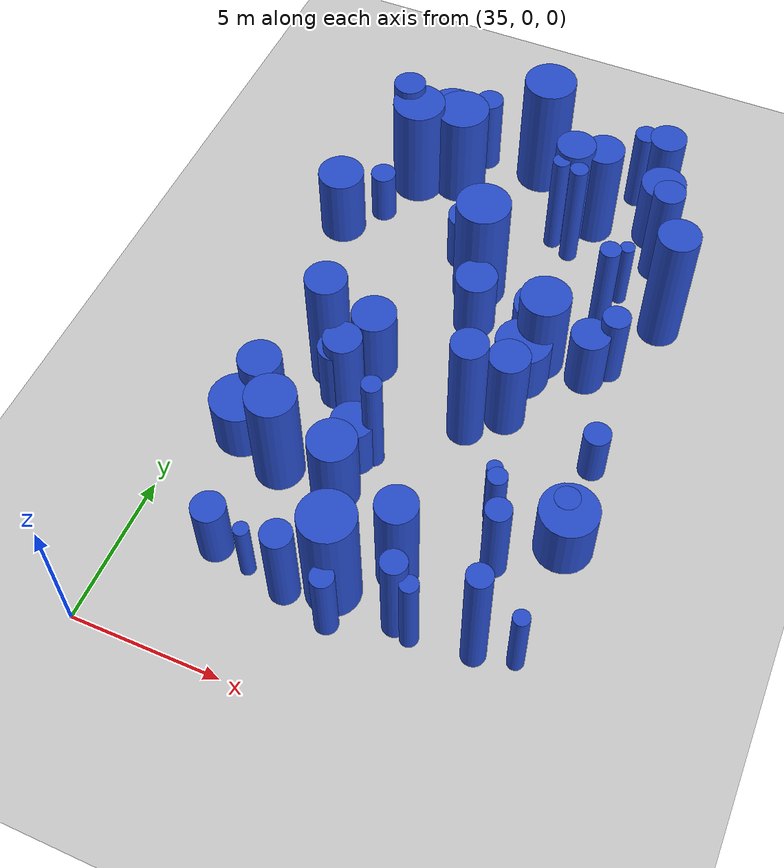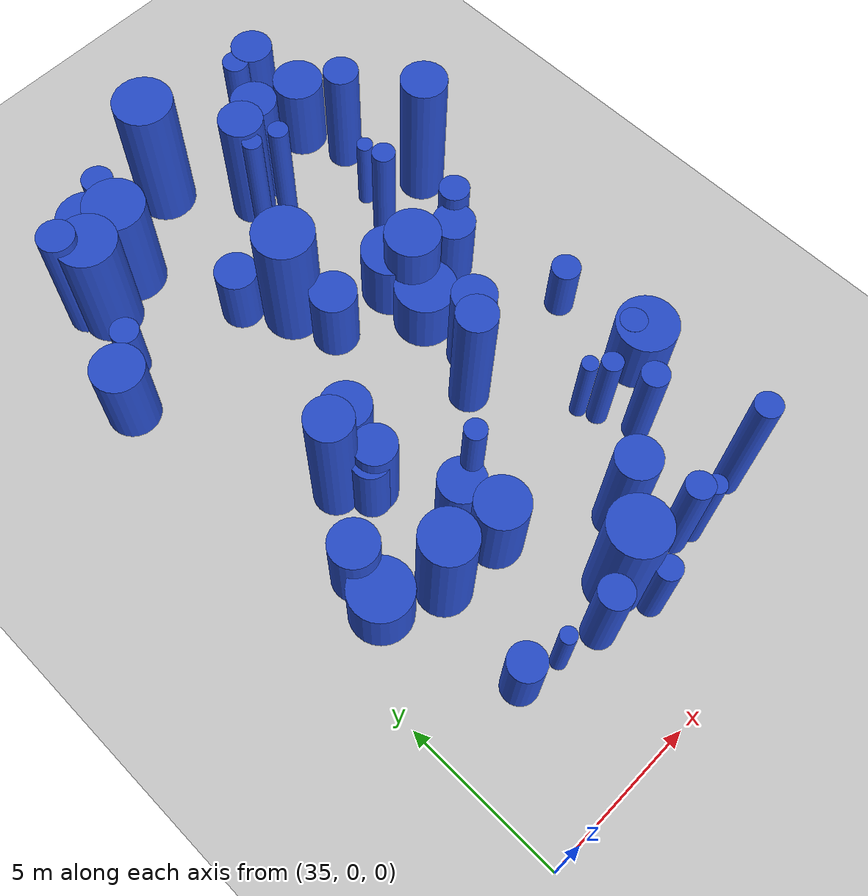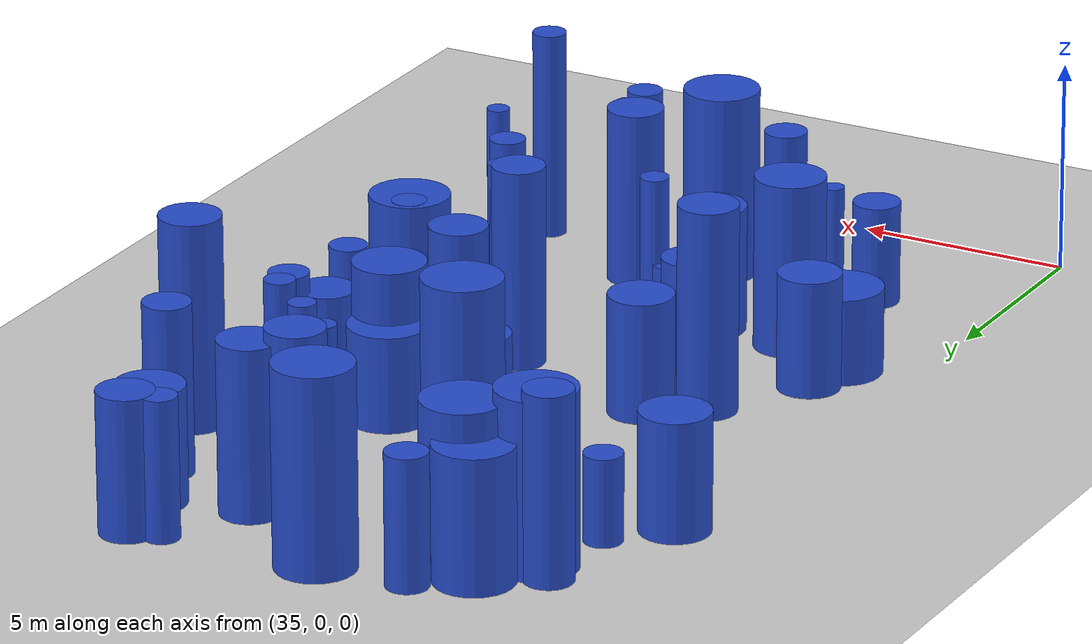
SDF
<sdf version="1.6">
 <world name="default">
  <model name="ground_plane">
   <static>1</static>
   <link name="link">
    <collision name="collision">
     <geometry><plane><normal>0 0 1</normal><size>100 100</size></plane></geometry>
     <surface><friction><ode><mu>100</mu><mu2>50</mu2></ode></friction></surface>
    </collision>
    <visual name="visual">
     <cast_shadows>0</cast_shadows>
     <geometry><plane><normal>0 0 1</normal><size>100 100</size></plane></geometry>
     <material>
      <script><uri>file://media/materials/scripts/gazebo.material</uri><name>Gazebo/Grey</name></script>
     </material>
    </visual>
   </link>
  </model>
  <model name="6">
   <static>0</static>
   <link name="link">
    <inertial>
     <mass>2</mass>
     <inertia>
      <ixx>0.798572</ixx>
      <ixy>0</ixy>
      <ixz>0</ixz>
      <iyy>0.798572</iyy>
      <iyz>0</iyz>
      <izz>0.198941</izz>
     </inertia>
    </inertial>
    <collision name="collision">
     <geometry><cylinder><length>2.04807</length><radius>0.446028</radius></cylinder></geometry>
     <surface><contact><collide_without_contact>1</collide_without_contact></contact></surface>
    </collision>
    <visual name="visual">
     <geometry><cylinder><length>2.04807</length><radius>0.446028</radius></cylinder></geometry>
     <material>
      <script><uri>file://media/materials/scripts/gazebo.material</uri><name>Gazebo/Blue</name></script>
     </material>
    </visual>
    <gravity>0</gravity>
   </link>
   <pose>36.9335 18.7301 1.02404 0 -0 0</pose>
  </model>
  <model name="19">
   <static>0</static>
   <link name="link">
    <inertial>
     <mass>2</mass>
     <inertia><ixx>1.56851</ixx><ixy>0</ixy><ixz>0</ixz><iyy>1.56851</iyy><iyz>0</iyz><izz>0.224417</izz></inertia>
    </inertial>
    <collision name="collision">
     <geometry><cylinder><length>2.95598</length><radius>0.473727</radius></cylinder></geometry>
     <surface><contact><collide_without_contact>1</collide_without_contact></contact></surface>
    </collision>
    <visual name="visual">
     <geometry><cylinder><length>2.95598</length><radius>0.473727</radius></cylinder></geometry>
     <material>
      <script><uri>file://media/materials/scripts/gazebo.material</uri><name>Gazebo/Blue</name></script>
     </material>
    </visual>
    <gravity>0</gravity>
   </link>
   <pose>46.86 15.0199 1.47799 0 -0 0</pose>
  </model>
  <model name="45">
   <static>0</static>
   <link name="link">
    <inertial>
     <mass>2</mass>
     <inertia>
      <ixx>3.27441</ixx>
      <ixy>0</ixy>
      <ixz>0</ixz>
      <iyy>3.27441</iyy>
      <iyz>0</iyz>
      <izz>0.0994808</izz>
     </inertia>
    </inertial>
    <collision name="collision">
     <geometry><cylinder><length>4.39864</length><radius>0.315406</radius></cylinder></geometry>
     <surface><contact><collide_without_contact>1</collide_without_contact></contact></surface>
    </collision>
    <visual name="visual">
     <geometry><cylinder><length>4.39864</length><radius>0.315406</radius></cylinder></geometry>
     <material>
      <script><uri>file://media/materials/scripts/gazebo.material</uri><name>Gazebo/Blue</name></script>
     </material>
    </visual>
    <gravity>0</gravity>
   </link>
   <pose>43.9023 19.4399 2.19932 0 -0 0</pose>
  </model>
  <model name="57">
   <static>0</static>
   <link name="link">
    <inertial>
     <mass>2</mass>
     <inertia>
      <ixx>2.94814</ixx>
      <ixy>0</ixy>
      <ixz>0</ixz>
      <iyy>2.94814</iyy>
      <iyz>0</iyz>
      <izz>0.0910601</izz>
     </inertia>
    </inertial>
    <collision name="collision">
     <geometry><cylinder><length>4.17321</length><radius>0.301762</radius></cylinder></geometry>
     <surface><contact><collide_without_contact>1</collide_without_contact></contact></surface>
    </collision>
    <visual name="visual">
     <geometry><cylinder><length>4.17321</length><radius>0.301762</radius></cylinder></geometry>
     <material>
      <script><uri>file://media/materials/scripts/gazebo.material</uri><name>Gazebo/Blue</name></script>
     </material>
    </visual>
    <gravity>0</gravity>
   </link>
   <pose>43.17 19.804 2.0866 0 -0 0</pose>
  </model>
  <model name="67">
   <static>0</static>
   <link name="link">
    <inertial>
     <mass>2</mass>
     <inertia><ixx>1.71533</ixx><ixy>0</ixy><ixz>0</ixz><iyy>1.71533</iyy><iyz>0</iyz><izz>0.238819</izz></inertia>
    </inertial>
    <collision name="collision">
     <geometry><cylinder><length>3.09444</length><radius>0.488691</radius></cylinder></geometry>
     <surface><contact><collide_without_contact>1</collide_without_contact></contact></surface>
    </collision>
    <visual name="visual">
     <geometry><cylinder><length>3.09444</length><radius>0.488691</radius></cylinder></geometry>
     <material>
      <script><uri>file://media/materials/scripts/gazebo.material</uri><name>Gazebo/Blue</name></script>
     </material>
    </visual>
    <gravity>0</gravity>
   </link>
   <pose>39.4487 22.7582 1.54722 0 -0 0</pose>
  </model>
  <model name="72">
   <static>0</static>
   <link name="link">
    <inertial>
     <mass>2</mass>
     <inertia><ixx>2.87764</ixx><ixy>0</ixy><ixz>0</ixz><iyy>2.87764</iyy><iyz>0</iyz><izz>0.901467</izz></inertia>
    </inertial>
    <collision name="collision">
     <geometry><cylinder><length>3.81594</length><radius>0.949456</radius></cylinder></geometry>
     <surface><contact><collide_without_contact>1</collide_without_contact></contact></surface>
    </collision>
    <visual name="visual">
     <geometry><cylinder><length>3.81594</length><radius>0.949456</radius></cylinder></geometry>
     <material>
      <script><uri>file://media/materials/scripts/gazebo.material</uri><name>Gazebo/Blue</name></script>
     </material>
    </visual>
    <gravity>0</gravity>
   </link>
   <pose>38.974 21.1839 1.90797 0 -0 0</pose>
  </model>
  <model name="82">
   <static>0</static>
   <link name="link">
    <inertial>
     <mass>2</mass>
     <inertia><ixx>1.12573</ixx><ixy>0</ixy><ixz>0</ixz><iyy>1.12573</iyy><iyz>0</iyz><izz>0.909327</izz></inertia>
    </inertial>
    <collision name="collision">
     <geometry><cylinder><length>2.00659</length><radius>0.953587</radius></cylinder></geometry>
     <surface><contact><collide_without_contact>1</collide_without_contact></contact></surface>
    </collision>
    <visual name="visual">
     <geometry><cylinder><length>2.00659</length><radius>0.953587</radius></cylinder></geometry>
     <material>
      <script><uri>file://media/materials/scripts/gazebo.material</uri><name>Gazebo/Blue</name></script>
     </material>
    </visual>
    <gravity>0</gravity>
   </link>
   <pose>44.2313 13.6334 1.0033 0 -0 0</pose>
  </model>
  <model name="88">
   <static>0</static>
   <link name="link">
    <inertial>
     <mass>2</mass>
     <inertia><ixx>1.53786</ixx><ixy>0</ixy><ixz>0</ixz><iyy>1.53786</iyy><iyz>0</iyz><izz>0.534153</izz></inertia>
    </inertial>
    <collision name="collision">
     <geometry><cylinder><length>2.76129</length><radius>0.730858</radius></cylinder></geometry>
     <surface><contact><collide_without_contact>1</collide_without_contact></contact></surface>
    </collision>
    <visual name="visual">
     <geometry><cylinder><length>2.76129</length><radius>0.730858</radius></cylinder></geometry>
     <material>
      <script><uri>file://media/materials/scripts/gazebo.material</uri><name>Gazebo/Blue</name></script>
     </material>
    </visual>
    <gravity>0</gravity>
   </link>
   <pose>36.906 9.11292 1.38065 0 -0 0</pose>
  </model>
  <model name="98">
   <static>0</static>
   <link name="link">
    <inertial>
     <mass>2</mass>
     <inertia><ixx>2.18267</ixx><ixy>0</ixy><ixz>0</ixz><iyy>2.18267</iyy><iyz>0</iyz><izz>0.247763</izz></inertia>
    </inertial>
    <collision name="collision">
     <geometry><cylinder><length>3.51465</length><radius>0.497758</radius></cylinder></geometry>
     <surface><contact><collide_without_contact>1</collide_without_contact></contact></surface>
    </collision>
    <visual name="visual">
     <geometry><cylinder><length>3.51465</length><radius>0.497758</radius></cylinder></geometry>
     <material>
      <script><uri>file://media/materials/scripts/gazebo.material</uri><name>Gazebo/Blue</name></script>
     </material>
    </visual>
    <gravity>0</gravity>
   </link>
   <pose>40.4795 3.31545 1.75732 0 -0 0</pose>
  </model>
  <model name="99">
   <static>0</static>
   <link name="link">
    <inertial>
     <mass>2</mass>
     <inertia>
      <ixx>1.49455</ixx>
      <ixy>0</ixy>
      <ixz>0</ixz>
      <iyy>1.49455</iyy>
      <iyz>0</iyz>
      <izz>0.0714187</izz>
     </inertia>
    </inertial>
    <collision name="collision">
     <geometry><cylinder><length>2.95856</length><radius>0.267243</radius></cylinder></geometry>
     <surface><contact><collide_without_contact>1</collide_without_contact></contact></surface>
    </collision>
    <visual name="visual">
     <geometry><cylinder><length>2.95856</length><radius>0.267243</radius></cylinder></geometry>
     <material>
      <script><uri>file://media/materials/scripts/gazebo.material</uri><name>Gazebo/Blue</name></script>
     </material>
    </visual>
    <gravity>0</gravity>
   </link>
   <pose>47.7187 3.91039 1.47928 0 -0 0</pose>
  </model>
  <model name="101">
   <static>0</static>
   <link name="link">
    <inertial>
     <mass>2</mass>
     <inertia><ixx>1.24291</ixx><ixy>0</ixy><ixz>0</ixz><iyy>1.24291</iyy><iyz>0</iyz><izz>0.443789</izz></inertia>
    </inertial>
    <collision name="collision">
     <geometry><cylinder><length>2.47509</length><radius>0.666175</radius></cylinder></geometry>
     <surface><contact><collide_without_contact>1</collide_without_contact></contact></surface>
    </collision>
    <visual name="visual">
     <geometry><cylinder><length>2.47509</length><radius>0.666175</radius></cylinder></geometry>
     <material>
      <script><uri>file://media/materials/scripts/gazebo.material</uri><name>Gazebo/Blue</name></script>
     </material>
    </visual>
    <gravity>0</gravity>
   </link>
   <pose>46.2352 14.4153 1.23755 0 -0 0</pose>
  </model>
  <model name="105">
   <static>0</static>
   <link name="link">
    <inertial>
     <mass>2</mass>
     <inertia><ixx>1.90894</ixx><ixy>0</ixy><ixz>0</ixz><iyy>1.90894</iyy><iyz>0</iyz><izz>0.166775</izz></inertia>
    </inertial>
    <collision name="collision">
     <geometry><cylinder><length>3.30958</length><radius>0.408381</radius></cylinder></geometry>
     <surface><contact><collide_without_contact>1</collide_without_contact></contact></surface>
    </collision>
    <visual name="visual">
     <geometry><cylinder><length>3.30958</length><radius>0.408381</radius></cylinder></geometry>
     <material>
      <script><uri>file://media/materials/scripts/gazebo.material</uri><name>Gazebo/Blue</name></script>
     </material>
    </visual>
    <gravity>0</gravity>
   </link>
   <pose>45.3048 23.0794 1.65479 0 -0 0</pose>
  </model>
  <model name="116">
   <static>0</static>
   <link name="link">
    <inertial>
     <mass>2</mass>
     <inertia><ixx>1.02695</ixx><ixy>0</ixy><ixz>0</ixz><iyy>1.02695</iyy><iyz>0</iyz><izz>0.517282</izz></inertia>
    </inertial>
    <collision name="collision">
     <geometry><cylinder><length>2.14705</length><radius>0.719223</radius></cylinder></geometry>
     <surface><contact><collide_without_contact>1</collide_without_contact></contact></surface>
    </collision>
    <visual name="visual">
     <geometry><cylinder><length>2.14705</length><radius>0.719223</radius></cylinder></geometry>
     <material>
      <script><uri>file://media/materials/scripts/gazebo.material</uri><name>Gazebo/Blue</name></script>
     </material>
    </visual>
    <gravity>0</gravity>
   </link>
   <pose>40.4286 8.5032 1.07353 0 -0 0</pose>
  </model>
  <model name="118">
   <static>0</static>
   <link name="link">
    <inertial>
     <mass>2</mass>
     <inertia><ixx>2.84514</ixx><ixy>0</ixy><ixz>0</ixz><iyy>2.84514</iyy><iyz>0</iyz><izz>0.30271</izz></inertia>
    </inertial>
    <collision name="collision">
     <geometry><cylinder><length>4.02029</length><radius>0.550191</radius></cylinder></geometry>
     <surface><contact><collide_without_contact>1</collide_without_contact></contact></surface>
    </collision>
    <visual name="visual">
     <geometry><cylinder><length>4.02029</length><radius>0.550191</radius></cylinder></geometry>
     <material>
      <script><uri>file://media/materials/scripts/gazebo.material</uri><name>Gazebo/Blue</name></script>
     </material>
    </visual>
    <gravity>0</gravity>
   </link>
   <pose>46.9727 19.9979 2.01015 0 -0 0</pose>
  </model>
  <model name="119">
   <static>0</static>
   <link name="link">
    <inertial>
     <mass>2</mass>
     <inertia><ixx>1.28123</ixx><ixy>0</ixy><ixz>0</ixz><iyy>1.28123</iyy><iyz>0</iyz><izz>0.846377</izz></inertia>
    </inertial>
    <collision name="collision">
     <geometry><cylinder><length>2.26897</length><radius>0.919988</radius></cylinder></geometry>
     <surface><contact><collide_without_contact>1</collide_without_contact></contact></surface>
    </collision>
    <visual name="visual">
     <geometry><cylinder><length>2.26897</length><radius>0.919988</radius></cylinder></geometry>
     <material>
      <script><uri>file://media/materials/scripts/gazebo.material</uri><name>Gazebo/Blue</name></script>
     </material>
    </visual>
    <gravity>0</gravity>
   </link>
   <pose>44.2743 15.1347 1.13449 0 -0 0</pose>
  </model>
  <model name="120">
   <static>0</static>
   <link name="link">
    <inertial>
     <mass>2</mass>
     <inertia><ixx>1.40868</ixx><ixy>0</ixy><ixz>0</ixz><iyy>1.40868</iyy><iyz>0</iyz><izz>0.339273</izz></inertia>
    </inertial>
    <collision name="collision">
     <geometry><cylinder><length>2.72658</length><radius>0.582472</radius></cylinder></geometry>
     <surface><contact><collide_without_contact>1</collide_without_contact></contact></surface>
    </collision>
    <visual name="visual">
     <geometry><cylinder><length>2.72658</length><radius>0.582472</radius></cylinder></geometry>
     <material>
      <script><uri>file://media/materials/scripts/gazebo.material</uri><name>Gazebo/Blue</name></script>
     </material>
    </visual>
    <gravity>0</gravity>
   </link>
   <pose>38.9033 10.5047 1.36329 0 -0 0</pose>
  </model>
  <model name="136">
   <static>0</static>
   <link name="link">
    <inertial>
     <mass>2</mass>
     <inertia><ixx>3.26897</ixx><ixy>0</ixy><ixz>0</ixz><iyy>3.26897</iyy><iyz>0</iyz><izz>0.863669</izz></inertia>
    </inertial>
    <collision name="collision">
     <geometry><cylinder><length>4.12587</length><radius>0.929338</radius></cylinder></geometry>
     <surface><contact><collide_without_contact>1</collide_without_contact></contact></surface>
    </collision>
    <visual name="visual">
     <geometry><cylinder><length>4.12587</length><radius>0.929338</radius></cylinder></geometry>
     <material>
      <script><uri>file://media/materials/scripts/gazebo.material</uri><name>Gazebo/Blue</name></script>
     </material>
    </visual>
    <gravity>0</gravity>
   </link>
   <pose>37.5394 20.5667 2.06294 0 -0 0</pose>
  </model>
  <model name="137">
   <static>0</static>
   <link name="link">
    <inertial>
     <mass>2</mass>
     <inertia><ixx>2.20257</ixx><ixy>0</ixy><ixz>0</ixz><iyy>2.20257</iyy><iyz>0</iyz><izz>0.461862</izz></inertia>
    </inertial>
    <collision name="collision">
     <geometry><cylinder><length>3.43945</length><radius>0.679604</radius></cylinder></geometry>
     <surface><contact><collide_without_contact>1</collide_without_contact></contact></surface>
    </collision>
    <visual name="visual">
     <geometry><cylinder><length>3.43945</length><radius>0.679604</radius></cylinder></geometry>
     <material>
      <script><uri>file://media/materials/scripts/gazebo.material</uri><name>Gazebo/Blue</name></script>
     </material>
    </visual>
    <gravity>0</gravity>
   </link>
   <pose>44.3325 11.8416 1.71973 0 -0 0</pose>
  </model>
  <model name="145">
   <static>0</static>
   <link name="link">
    <inertial>
     <mass>2</mass>
     <inertia><ixx>1.85346</ixx><ixy>0</ixy><ixz>0</ixz><iyy>1.85346</iyy><iyz>0</iyz><izz>0.103431</izz></inertia>
    </inertial>
    <collision name="collision">
     <geometry><cylinder><length>3.28793</length><radius>0.321608</radius></cylinder></geometry>
     <surface><contact><collide_without_contact>1</collide_without_contact></contact></surface>
    </collision>
    <visual name="visual">
     <geometry><cylinder><length>3.28793</length><radius>0.321608</radius></cylinder></geometry>
     <material>
      <script><uri>file://media/materials/scripts/gazebo.material</uri><name>Gazebo/Blue</name></script>
     </material>
    </visual>
    <gravity>0</gravity>
   </link>
   <pose>45.522 7.70919 1.64396 0 -0 0</pose>
  </model>
  <model name="150">
   <static>0</static>
   <link name="link">
    <inertial>
     <mass>2</mass>
     <inertia><ixx>1.93783</ixx><ixy>0</ixy><ixz>0</ixz><iyy>1.93783</iyy><iyz>0</iyz><izz>0.415516</izz></inertia>
    </inertial>
    <collision name="collision">
     <geometry><cylinder><length>3.22187</length><radius>0.644606</radius></cylinder></geometry>
     <surface><contact><collide_without_contact>1</collide_without_contact></contact></surface>
    </collision>
    <visual name="visual">
     <geometry><cylinder><length>3.22187</length><radius>0.644606</radius></cylinder></geometry>
     <material>
      <script><uri>file://media/materials/scripts/gazebo.material</uri><name>Gazebo/Blue</name></script>
     </material>
    </visual>
    <gravity>0</gravity>
   </link>
   <pose>39.1495 10.5867 1.61094 0 -0 0</pose>
  </model>
  <model name="152">
   <static>0</static>
   <link name="link">
    <inertial>
     <mass>2</mass>
     <inertia><ixx>2.38788</ixx><ixy>0</ixy><ixz>0</ixz><iyy>2.38788</iyy><iyz>0</iyz><izz>0.720026</izz></inertia>
    </inertial>
    <collision name="collision">
     <geometry><cylinder><length>3.48816</length><radius>0.848543</radius></cylinder></geometry>
     <surface><contact><collide_without_contact>1</collide_without_contact></contact></surface>
    </collision>
    <visual name="visual">
     <geometry><cylinder><length>3.48816</length><radius>0.848543</radius></cylinder></geometry>
     <material>
      <script><uri>file://media/materials/scripts/gazebo.material</uri><name>Gazebo/Blue</name></script>
     </material>
    </visual>
    <gravity>0</gravity>
   </link>
   <pose>44.5666 14.5232 1.74408 0 -0 0</pose>
  </model>
  <model name="155">
   <static>0</static>
   <link name="link">
    <inertial>
     <mass>2</mass>
     <inertia><ixx>2.71802</ixx><ixy>0</ixy><ixz>0</ixz><iyy>2.71802</iyy><iyz>0</iyz><izz>0.171185</izz></inertia>
    </inertial>
    <collision name="collision">
     <geometry><cylinder><length>3.97424</length><radius>0.413745</radius></cylinder></geometry>
     <surface><contact><collide_without_contact>1</collide_without_contact></contact></surface>
    </collision>
    <visual name="visual">
     <geometry><cylinder><length>3.97424</length><radius>0.413745</radius></cylinder></geometry>
     <material>
      <script><uri>file://media/materials/scripts/gazebo.material</uri><name>Gazebo/Blue</name></script>
     </material>
    </visual>
    <gravity>0</gravity>
   </link>
   <pose>44.0068 3.59498 1.98712 0 -0 0</pose>
  </model>
  <model name="167">
   <static>0</static>
   <link name="link">
    <inertial>
     <mass>2</mass>
     <inertia><ixx>2.97575</ixx><ixy>0</ixy><ixz>0</ixz><iyy>2.97575</iyy><iyz>0</iyz><izz>0.496613</izz></inertia>
    </inertial>
    <collision name="collision">
     <geometry><cylinder><length>4.04533</length><radius>0.704708</radius></cylinder></geometry>
     <surface><contact><collide_without_contact>1</collide_without_contact></contact></surface>
    </collision>
    <visual name="visual">
     <geometry><cylinder><length>4.04533</length><radius>0.704708</radius></cylinder></geometry>
     <material>
      <script><uri>file://media/materials/scripts/gazebo.material</uri><name>Gazebo/Blue</name></script>
     </material>
    </visual>
    <gravity>0</gravity>
   </link>
   <pose>44.3187 21.0253 2.02266 0 -0 0</pose>
  </model>
  <model name="169">
   <static>0</static>
   <link name="link">
    <inertial>
     <mass>2</mass>
     <inertia>
      <ixx>1.27619</ixx>
      <ixy>0</ixy>
      <ixz>0</ixz>
      <iyy>1.27619</iyy>
      <iyz>0</iyz>
      <izz>0.0662221</izz>
     </inertia>
    </inertial>
    <collision name="collision">
     <geometry><cylinder><length>2.73102</length><radius>0.257337</radius></cylinder></geometry>
     <surface><contact><collide_without_contact>1</collide_without_contact></contact></surface>
    </collision>
    <visual name="visual">
     <geometry><cylinder><length>2.73102</length><radius>0.257337</radius></cylinder></geometry>
     <material>
      <script><uri>file://media/materials/scripts/gazebo.material</uri><name>Gazebo/Blue</name></script>
     </material>
    </visual>
    <gravity>0</gravity>
   </link>
   <pose>46.2222 18.2269 1.36551 0 -0 0</pose>
  </model>
  <model name="170">
   <static>0</static>
   <link name="link">
    <inertial>
     <mass>2</mass>
     <inertia><ixx>1.62614</ixx><ixy>0</ixy><ixz>0</ixz><iyy>1.62614</iyy><iyz>0</iyz><izz>0.655865</izz></inertia>
    </inertial>
    <collision name="collision">
     <geometry><cylinder><length>2.79092</length><radius>0.809855</radius></cylinder></geometry>
     <surface><contact><collide_without_contact>1</collide_without_contact></contact></surface>
    </collision>
    <visual name="visual">
     <geometry><cylinder><length>2.79092</length><radius>0.809855</radius></cylinder></geometry>
     <material>
      <script><uri>file://media/materials/scripts/gazebo.material</uri><name>Gazebo/Blue</name></script>
     </material>
    </visual>
    <gravity>0</gravity>
   </link>
   <pose>35.848 17.5071 1.39546 0 -0 0</pose>
  </model>
  <model name="171">
   <static>0</static>
   <link name="link">
    <inertial>
     <mass>2</mass>
     <inertia><ixx>1.32113</ixx><ixy>0</ixy><ixz>0</ixz><iyy>1.32113</iyy><iyz>0</iyz><izz>0.517746</izz></inertia>
    </inertial>
    <collision name="collision">
     <geometry><cylinder><length>2.52459</length><radius>0.719546</radius></cylinder></geometry>
     <surface><contact><collide_without_contact>1</collide_without_contact></contact></surface>
    </collision>
    <visual name="visual">
     <geometry><cylinder><length>2.52459</length><radius>0.719546</radius></cylinder></geometry>
     <material>
      <script><uri>file://media/materials/scripts/gazebo.material</uri><name>Gazebo/Blue</name></script>
     </material>
    </visual>
    <gravity>0</gravity>
   </link>
   <pose>41.9355 15.171 1.26229 0 -0 0</pose>
  </model>
  <model name="175">
   <static>0</static>
   <link name="link">
    <inertial>
     <mass>2</mass>
     <inertia><ixx>2.09233</ixx><ixy>0</ixy><ixz>0</ixz><iyy>2.09233</iyy><iyz>0</iyz><izz>0.850902</izz></inertia>
    </inertial>
    <collision name="collision">
     <geometry><cylinder><length>3.16248</length><radius>0.922444</radius></cylinder></geometry>
     <surface><contact><collide_without_contact>1</collide_without_contact></contact></surface>
    </collision>
    <visual name="visual">
     <geometry><cylinder><length>3.16248</length><radius>0.922444</radius></cylinder></geometry>
     <material>
      <script><uri>file://media/materials/scripts/gazebo.material</uri><name>Gazebo/Blue</name></script>
     </material>
    </visual>
    <gravity>0</gravity>
   </link>
   <pose>38.3389 21.8535 1.58124 0 -0 0</pose>
  </model>
  <model name="182">
   <static>0</static>
   <link name="link">
    <inertial>
     <mass>2</mass>
     <inertia><ixx>2.3455</ixx><ixy>0</ixy><ixz>0</ixz><iyy>2.3455</iyy><iyz>0</iyz><izz>0.128632</izz></inertia>
    </inertial>
    <collision name="collision">
     <geometry><cylinder><length>3.69961</length><radius>0.358653</radius></cylinder></geometry>
     <surface><contact><collide_without_contact>1</collide_without_contact></contact></surface>
    </collision>
    <visual name="visual">
     <geometry><cylinder><length>3.69961</length><radius>0.358653</radius></cylinder></geometry>
     <material>
      <script><uri>file://media/materials/scripts/gazebo.material</uri><name>Gazebo/Blue</name></script>
     </material>
    </visual>
    <gravity>0</gravity>
   </link>
   <pose>45.8853 17.0491 1.84981 0 -0 0</pose>
  </model>
  <model name="217">
   <static>0</static>
   <link name="link">
    <inertial>
     <mass>2</mass>
     <inertia>
      <ixx>0.935657</ixx>
      <ixy>0</ixy>
      <ixz>0</ixz>
      <iyy>0.935657</iyy>
      <iyz>0</iyz>
      <izz>0.172825</izz>
     </inertia>
    </inertial>
    <collision name="collision">
     <geometry><cylinder><length>2.25731</length><radius>0.415722</radius></cylinder></geometry>
     <surface><contact><collide_without_contact>1</collide_without_contact></contact></surface>
    </collision>
    <visual name="visual">
     <geometry><cylinder><length>2.25731</length><radius>0.415722</radius></cylinder></geometry>
     <material>
      <script><uri>file://media/materials/scripts/gazebo.material</uri><name>Gazebo/Blue</name></script>
     </material>
    </visual>
    <gravity>0</gravity>
   </link>
   <pose>47.5424 8.43529 1.12866 0 -0 0</pose>
  </model>
  <model name="224">
   <static>0</static>
   <link name="link">
    <inertial>
     <mass>2</mass>
     <inertia><ixx>3.16127</ixx><ixy>0</ixy><ixz>0</ixz><iyy>3.16127</iyy><iyz>0</iyz><izz>0.673623</izz></inertia>
    </inertial>
    <collision name="collision">
     <geometry><cylinder><length>4.11664</length><radius>0.820745</radius></cylinder></geometry>
     <surface><contact><collide_without_contact>1</collide_without_contact></contact></surface>
    </collision>
    <visual name="visual">
     <geometry><cylinder><length>4.11664</length><radius>0.820745</radius></cylinder></geometry>
     <material>
      <script><uri>file://media/materials/scripts/gazebo.material</uri><name>Gazebo/Blue</name></script>
     </material>
    </visual>
    <gravity>0</gravity>
   </link>
   <pose>38.4007 7.15799 2.05832 0 -0 0</pose>
  </model>
  <model name="234">
   <static>0</static>
   <link name="link">
    <inertial>
     <mass>2</mass>
     <inertia><ixx>3.13441</ixx><ixy>0</ixy><ixz>0</ixz><iyy>3.13441</iyy><iyz>0</iyz><izz>0.438051</izz></inertia>
    </inertial>
    <collision name="collision">
     <geometry><cylinder><length>4.18238</length><radius>0.661854</radius></cylinder></geometry>
     <surface><contact><collide_without_contact>1</collide_without_contact></contact></surface>
    </collision>
    <visual name="visual">
     <geometry><cylinder><length>4.18238</length><radius>0.661854</radius></cylinder></geometry>
     <material>
      <script><uri>file://media/materials/scripts/gazebo.material</uri><name>Gazebo/Blue</name></script>
     </material>
    </visual>
    <gravity>0</gravity>
   </link>
   <pose>43.3973 5.18568 2.09119 0 -0 0</pose>
  </model>
  <model name="249">
   <static>0</static>
   <link name="link">
    <inertial>
     <mass>2</mass>
     <inertia><ixx>4.11239</ixx><ixy>0</ixy><ixz>0</ixz><iyy>4.11239</iyy><iyz>0</iyz><izz>0.845194</izz></inertia>
    </inertial>
    <collision name="collision">
     <geometry><cylinder><length>4.70519</length><radius>0.919344</radius></cylinder></geometry>
     <surface><contact><collide_without_contact>1</collide_without_contact></contact></surface>
    </collision>
    <visual name="visual">
     <geometry><cylinder><length>4.70519</length><radius>0.919344</radius></cylinder></geometry>
     <material>
      <script><uri>file://media/materials/scripts/gazebo.material</uri><name>Gazebo/Blue</name></script>
     </material>
    </visual>
    <gravity>0</gravity>
   </link>
   <pose>41.6442 22.8356 2.35259 0 -0 0</pose>
  </model>
  <model name="253">
   <static>0</static>
   <link name="link">
    <inertial>
     <mass>2</mass>
     <inertia>
      <ixx>1.38736</ixx>
      <ixy>0</ixy>
      <ixz>0</ixz>
      <iyy>1.38736</iyy>
      <iyz>0</iyz>
      <izz>0.0647171</izz>
     </inertia>
    </inertial>
    <collision name="collision">
     <geometry><cylinder><length>2.85132</length><radius>0.254395</radius></cylinder></geometry>
     <surface><contact><collide_without_contact>1</collide_without_contact></contact></surface>
    </collision>
    <visual name="visual">
     <geometry><cylinder><length>2.85132</length><radius>0.254395</radius></cylinder></geometry>
     <material>
      <script><uri>file://media/materials/scripts/gazebo.material</uri><name>Gazebo/Blue</name></script>
     </material>
    </visual>
    <gravity>0</gravity>
   </link>
   <pose>45.2591 8.22789 1.42566 0 -0 0</pose>
  </model>
  <model name="261">
   <static>0</static>
   <link name="link">
    <inertial>
     <mass>2</mass>
     <inertia><ixx>3.92085</ixx><ixy>0</ixy><ixz>0</ixz><iyy>3.92085</iyy><iyz>0</iyz><izz>0.374343</izz></inertia>
    </inertial>
    <collision name="collision">
     <geometry><cylinder><length>4.73308</length><radius>0.611836</radius></cylinder></geometry>
     <surface><contact><collide_without_contact>1</collide_without_contact></contact></surface>
    </collision>
    <visual name="visual">
     <geometry><cylinder><length>4.73308</length><radius>0.611836</radius></cylinder></geometry>
     <material>
      <script><uri>file://media/materials/scripts/gazebo.material</uri><name>Gazebo/Blue</name></script>
     </material>
    </visual>
    <gravity>0</gravity>
   </link>
   <pose>43.3222 10.8777 2.36654 0 -0 0</pose>
  </model>
  <model name="269">
   <static>0</static>
   <link name="link">
    <inertial>
     <mass>2</mass>
     <inertia><ixx>1.59036</ixx><ixy>0</ixy><ixz>0</ixz><iyy>1.59036</iyy><iyz>0</iyz><izz>0.142162</izz></inertia>
    </inertial>
    <collision name="collision">
     <geometry><cylinder><length>3.01921</length><radius>0.377044</radius></cylinder></geometry>
     <surface><contact><collide_without_contact>1</collide_without_contact></contact></surface>
    </collision>
    <visual name="visual">
     <geometry><cylinder><length>3.01921</length><radius>0.377044</radius></cylinder></geometry>
     <material>
      <script><uri>file://media/materials/scripts/gazebo.material</uri><name>Gazebo/Blue</name></script>
     </material>
    </visual>
    <gravity>0</gravity>
   </link>
   <pose>42.1156 2.82847 1.50961 0 -0 0</pose>
  </model>
  <model name="271">
   <static>0</static>
   <link name="link">
    <inertial>
     <mass>2</mass>
     <inertia>
      <ixx>0.817362</ixx>
      <ixy>0</ixy>
      <ixz>0</ixz>
      <iyy>0.817362</iyy>
      <iyz>0</iyz>
      <izz>0.202451</izz>
     </inertia>
    </inertial>
    <collision name="collision">
     <geometry><cylinder><length>2.07288</length><radius>0.449946</radius></cylinder></geometry>
     <surface><contact><collide_without_contact>1</collide_without_contact></contact></surface>
    </collision>
    <visual name="visual">
     <geometry><cylinder><length>2.07288</length><radius>0.449946</radius></cylinder></geometry>
     <material>
      <script><uri>file://media/materials/scripts/gazebo.material</uri><name>Gazebo/Blue</name></script>
     </material>
    </visual>
    <gravity>0</gravity>
   </link>
   <pose>47.6206 11.0875 1.03644 0 -0 0</pose>
  </model>
  <model name="292">
   <static>0</static>
   <link name="link">
    <inertial>
     <mass>2</mass>
     <inertia><ixx>3.78652</ixx><ixy>0</ixy><ixz>0</ixz><iyy>3.78652</iyy><iyz>0</iyz><izz>0.785687</izz></inertia>
    </inertial>
    <collision name="collision">
     <geometry><cylinder><length>4.51243</length><radius>0.88639</radius></cylinder></geometry>
     <surface><contact><collide_without_contact>1</collide_without_contact></contact></surface>
    </collision>
    <visual name="visual">
     <geometry><cylinder><length>4.51243</length><radius>0.88639</radius></cylinder></geometry>
     <material>
      <script><uri>file://media/materials/scripts/gazebo.material</uri><name>Gazebo/Blue</name></script>
     </material>
    </visual>
    <gravity>0</gravity>
   </link>
   <pose>41.8401 3.90308 2.25622 0 -0 0</pose>
  </model>
  <model name="305">
   <static>0</static>
   <link name="link">
    <inertial>
     <mass>2</mass>
     <inertia><ixx>1.58598</ixx><ixy>0</ixy><ixz>0</ixz><iyy>1.58598</iyy><iyz>0</iyz><izz>0.631832</izz></inertia>
    </inertial>
    <collision name="collision">
     <geometry><cylinder><length>2.76051</length><radius>0.794879</radius></cylinder></geometry>
     <surface><contact><collide_without_contact>1</collide_without_contact></contact></surface>
    </collision>
    <visual name="visual">
     <geometry><cylinder><length>2.76051</length><radius>0.794879</radius></cylinder></geometry>
     <material>
      <script><uri>file://media/materials/scripts/gazebo.material</uri><name>Gazebo/Blue</name></script>
     </material>
    </visual>
    <gravity>0</gravity>
   </link>
   <pose>46.4872 21.5428 1.38025 0 -0 0</pose>
  </model>
  <model name="324">
   <static>0</static>
   <link name="link">
    <inertial>
     <mass>2</mass>
     <inertia><ixx>2.04911</ixx><ixy>0</ixy><ixz>0</ixz><iyy>2.04911</iyy><iyz>0</iyz><izz>0.175102</izz></inertia>
    </inertial>
    <collision name="collision">
     <geometry><cylinder><length>3.43065</length><radius>0.418452</radius></cylinder></geometry>
     <surface><contact><collide_without_contact>1</collide_without_contact></contact></surface>
    </collision>
    <visual name="visual">
     <geometry><cylinder><length>3.43065</length><radius>0.418452</radius></cylinder></geometry>
     <material>
      <script><uri>file://media/materials/scripts/gazebo.material</uri><name>Gazebo/Blue</name></script>
     </material>
    </visual>
    <gravity>0</gravity>
   </link>
   <pose>45.9812 6.59246 1.71532 0 -0 0</pose>
  </model>
  <model name="347">
   <static>0</static>
   <link name="link">
    <inertial>
     <mass>2</mass>
     <inertia><ixx>1.29773</ixx><ixy>0</ixy><ixz>0</ixz><iyy>1.29773</iyy><iyz>0</iyz><izz>0.905692</izz></inertia>
    </inertial>
    <collision name="collision">
     <geometry><cylinder><length>2.25151</length><radius>0.951679</radius></cylinder></geometry>
     <surface><contact><collide_without_contact>1</collide_without_contact></contact></surface>
    </collision>
    <visual name="visual">
     <geometry><cylinder><length>2.25151</length><radius>0.951679</radius></cylinder></geometry>
     <material>
      <script><uri>file://media/materials/scripts/gazebo.material</uri><name>Gazebo/Blue</name></script>
     </material>
    </visual>
    <gravity>0</gravity>
   </link>
   <pose>47.7369 8.0693 1.12575 0 -0 0</pose>
  </model>
  <model name="355">
   <static>0</static>
   <link name="link">
    <inertial>
     <mass>2</mass>
     <inertia>
      <ixx>1.04618</ixx>
      <ixy>0</ixy>
      <ixz>0</ixz>
      <iyy>1.04618</iyy>
      <iyz>0</iyz>
      <izz>0.0627363</izz>
     </inertia>
    </inertial>
    <collision name="collision">
     <geometry><cylinder><length>2.46757</length><radius>0.250472</radius></cylinder></geometry>
     <surface><contact><collide_without_contact>1</collide_without_contact></contact></surface>
    </collision>
    <visual name="visual">
     <geometry><cylinder><length>2.46757</length><radius>0.250472</radius></cylinder></geometry>
     <material>
      <script><uri>file://media/materials/scripts/gazebo.material</uri><name>Gazebo/Blue</name></script>
     </material>
    </visual>
    <gravity>0</gravity>
   </link>
   <pose>39.1217 3.54359 1.23378 0 -0 0</pose>
  </model>
  <model name="369">
   <static>0</static>
   <link name="link">
    <inertial>
     <mass>2</mass>
     <inertia><ixx>2.04539</ixx><ixy>0</ixy><ixz>0</ixz><iyy>2.04539</iyy><iyz>0</iyz><izz>0.42791</izz></inertia>
    </inertial>
    <collision name="collision">
     <geometry><cylinder><length>3.3149</length><radius>0.654148</radius></cylinder></geometry>
     <surface><contact><collide_without_contact>1</collide_without_contact></contact></surface>
    </collision>
    <visual name="visual">
     <geometry><cylinder><length>3.3149</length><radius>0.654148</radius></cylinder></geometry>
     <material>
      <script><uri>file://media/materials/scripts/gazebo.material</uri><name>Gazebo/Blue</name></script>
     </material>
    </visual>
    <gravity>0</gravity>
   </link>
   <pose>46.0804 23.1875 1.65745 0 -0 0</pose>
  </model>
  <model name="387">
   <static>0</static>
   <link name="link">
    <inertial>
     <mass>2</mass>
     <inertia><ixx>1.1471</ixx><ixy>0</ixy><ixz>0</ixz><iyy>1.1471</iyy><iyz>0</iyz><izz>0.307863</izz></inertia>
    </inertial>
    <collision name="collision">
     <geometry><cylinder><length>2.4411</length><radius>0.554854</radius></cylinder></geometry>
     <surface><contact><collide_without_contact>1</collide_without_contact></contact></surface>
    </collision>
    <visual name="visual">
     <geometry><cylinder><length>2.4411</length><radius>0.554854</radius></cylinder></geometry>
     <material>
      <script><uri>file://media/materials/scripts/gazebo.material</uri><name>Gazebo/Blue</name></script>
     </material>
    </visual>
    <gravity>0</gravity>
   </link>
   <pose>37.874 3.82917 1.22055 0 -0 0</pose>
  </model>
  <model name="395">
   <static>0</static>
   <link name="link">
    <inertial>
     <mass>2</mass>
     <inertia><ixx>3.39084</ixx><ixy>0</ixy><ixz>0</ixz><iyy>3.39084</iyy><iyz>0</iyz><izz>0.320409</izz></inertia>
    </inertial>
    <collision name="collision">
     <geometry><cylinder><length>4.40271</length><radius>0.566047</radius></cylinder></geometry>
     <surface><contact><collide_without_contact>1</collide_without_contact></contact></surface>
    </collision>
    <visual name="visual">
     <geometry><cylinder><length>4.40271</length><radius>0.566047</radius></cylinder></geometry>
     <material>
      <script><uri>file://media/materials/scripts/gazebo.material</uri><name>Gazebo/Blue</name></script>
     </material>
    </visual>
    <gravity>0</gravity>
   </link>
   <pose>36.9685 21.0841 2.20135 0 -0 0</pose>
  </model>
  <model name="406">
   <static>0</static>
   <link name="link">
    <inertial>
     <mass>2</mass>
     <inertia><ixx>1.62538</ixx><ixy>0</ixy><ixz>0</ixz><iyy>1.62538</iyy><iyz>0</iyz><izz>0.577189</izz></inertia>
    </inertial>
    <collision name="collision">
     <geometry><cylinder><length>2.83209</length><radius>0.759729</radius></cylinder></geometry>
     <surface><contact><collide_without_contact>1</collide_without_contact></contact></surface>
    </collision>
    <visual name="visual">
     <geometry><cylinder><length>2.83209</length><radius>0.759729</radius></cylinder></geometry>
     <material>
      <script><uri>file://media/materials/scripts/gazebo.material</uri><name>Gazebo/Blue</name></script>
     </material>
    </visual>
    <gravity>0</gravity>
   </link>
   <pose>39.5416 12.14 1.41605 0 -0 0</pose>
  </model>
  <model name="422">
   <static>0</static>
   <link name="link">
    <inertial>
     <mass>2</mass>
     <inertia><ixx>1.14792</ixx><ixy>0</ixy><ixz>0</ixz><iyy>1.14792</iyy><iyz>0</iyz><izz>0.896844</izz></inertia>
    </inertial>
    <collision name="collision">
     <geometry><cylinder><length>2.04866</length><radius>0.947018</radius></cylinder></geometry>
     <surface><contact><collide_without_contact>1</collide_without_contact></contact></surface>
    </collision>
    <visual name="visual">
     <geometry><cylinder><length>2.04866</length><radius>0.947018</radius></cylinder></geometry>
     <material>
      <script><uri>file://media/materials/scripts/gazebo.material</uri><name>Gazebo/Blue</name></script>
     </material>
    </visual>
    <gravity>0</gravity>
   </link>
   <pose>36.6962 7.90806 1.02433 0 -0 0</pose>
  </model>
  <model name="429">
   <static>0</static>
   <link name="link">
    <inertial>
     <mass>2</mass>
     <inertia><ixx>4.3351</ixx><ixy>0</ixy><ixz>0</ixz><iyy>4.3351</iyy><iyz>0</iyz><izz>0.513159</izz></inertia>
    </inertial>
    <collision name="collision">
     <geometry><cylinder><length>4.94683</length><radius>0.716351</radius></cylinder></geometry>
     <surface><contact><collide_without_contact>1</collide_without_contact></contact></surface>
    </collision>
    <visual name="visual">
     <geometry><cylinder><length>4.94683</length><radius>0.716351</radius></cylinder></geometry>
     <material>
      <script><uri>file://media/materials/scripts/gazebo.material</uri><name>Gazebo/Blue</name></script>
     </material>
    </visual>
    <gravity>0</gravity>
   </link>
   <pose>47.9308 17.3969 2.47341 0 -0 0</pose>
  </model>
  <model name="435">
   <static>0</static>
   <link name="link">
    <inertial>
     <mass>2</mass>
     <inertia><ixx>3.73065</ixx><ixy>0</ixy><ixz>0</ixz><iyy>3.73065</iyy><iyz>0</iyz><izz>0.858955</izz></inertia>
    </inertial>
    <collision name="collision">
     <geometry><cylinder><length>4.45051</length><radius>0.926798</radius></cylinder></geometry>
     <surface><contact><collide_without_contact>1</collide_without_contact></contact></surface>
    </collision>
    <visual name="visual">
     <geometry><cylinder><length>4.45051</length><radius>0.926798</radius></cylinder></geometry>
     <material>
      <script><uri>file://media/materials/scripts/gazebo.material</uri><name>Gazebo/Blue</name></script>
     </material>
    </visual>
    <gravity>0</gravity>
   </link>
   <pose>41.5281 16.6464 2.22526 0 -0 0</pose>
  </model>
  <model name="442">
   <static>0</static>
   <link name="link">
    <inertial>
     <mass>2</mass>
     <inertia><ixx>4.26767</ixx><ixy>0</ixy><ixz>0</ixz><iyy>4.26767</iyy><iyz>0</iyz><izz>0.47793</izz></inertia>
    </inertial>
    <collision name="collision">
     <geometry><cylinder><length>4.91653</length><radius>0.691325</radius></cylinder></geometry>
     <surface><contact><collide_without_contact>1</collide_without_contact></contact></surface>
    </collision>
    <visual name="visual">
     <geometry><cylinder><length>4.91653</length><radius>0.691325</radius></cylinder></geometry>
     <material>
      <script><uri>file://media/materials/scripts/gazebo.material</uri><name>Gazebo/Blue</name></script>
     </material>
    </visual>
    <gravity>0</gravity>
   </link>
   <pose>38.2946 11.3531 2.45826 0 -0 0</pose>
  </model>
  <model name="449">
   <static>0</static>
   <link name="link">
    <inertial>
     <mass>2</mass>
     <inertia><ixx>4.22021</ixx><ixy>0</ixy><ixz>0</ixz><iyy>4.22021</iyy><iyz>0</iyz><izz>0.15612</izz></inertia>
    </inertial>
    <collision name="collision">
     <geometry><cylinder><length>4.98527</length><radius>0.39512</radius></cylinder></geometry>
     <surface><contact><collide_without_contact>1</collide_without_contact></contact></surface>
    </collision>
    <visual name="visual">
     <geometry><cylinder><length>4.98527</length><radius>0.39512</radius></cylinder></geometry>
     <material>
      <script><uri>file://media/materials/scripts/gazebo.material</uri><name>Gazebo/Blue</name></script>
     </material>
    </visual>
    <gravity>0</gravity>
   </link>
   <pose>46.4942 3.64208 2.49264 0 -0 0</pose>
  </model>
  <model name="455">
   <static>0</static>
   <link name="link">
    <inertial>
     <mass>2</mass>
     <inertia><ixx>3.36101</ixx><ixy>0</ixy><ixz>0</ixz><iyy>3.36101</iyy><iyz>0</iyz><izz>0.468314</izz></inertia>
    </inertial>
    <collision name="collision">
     <geometry><cylinder><length>4.33141</length><radius>0.684335</radius></cylinder></geometry>
     <surface><contact><collide_without_contact>1</collide_without_contact></contact></surface>
    </collision>
    <visual name="visual">
     <geometry><cylinder><length>4.33141</length><radius>0.684335</radius></cylinder></geometry>
     <material>
      <script><uri>file://media/materials/scripts/gazebo.material</uri><name>Gazebo/Blue</name></script>
     </material>
    </visual>
    <gravity>0</gravity>
   </link>
   <pose>43.4203 20.5635 2.16571 0 -0 0</pose>
  </model>
  <model name="458">
   <static>0</static>
   <link name="link">
    <inertial>
     <mass>2</mass>
     <inertia><ixx>1.04301</ixx><ixy>0</ixy><ixz>0</ixz><iyy>1.04301</iyy><iyz>0</iyz><izz>0.428855</izz></inertia>
    </inertial>
    <collision name="collision">
     <geometry><cylinder><length>2.22968</length><radius>0.65487</radius></cylinder></geometry>
     <surface><contact><collide_without_contact>1</collide_without_contact></contact></surface>
    </collision>
    <visual name="visual">
     <geometry><cylinder><length>2.22968</length><radius>0.65487</radius></cylinder></geometry>
     <material>
      <script><uri>file://media/materials/scripts/gazebo.material</uri><name>Gazebo/Blue</name></script>
     </material>
    </visual>
    <gravity>0</gravity>
   </link>
   <pose>40.5163 17.8736 1.11484 0 -0 0</pose>
  </model>
  <model name="480">
   <static>0</static>
   <link name="link">
    <inertial>
     <mass>2</mass>
     <inertia>
      <ixx>2.09207</ixx>
      <ixy>0</ixy>
      <ixz>0</ixz>
      <iyy>2.09207</iyy>
      <iyz>0</iyz>
      <izz>0.0882919</izz>
     </inertia>
    </inertial>
    <collision name="collision">
     <geometry><cylinder><length>3.50536</length><radius>0.29714</radius></cylinder></geometry>
     <surface><contact><collide_without_contact>1</collide_without_contact></contact></surface>
    </collision>
    <visual name="visual">
     <geometry><cylinder><length>3.50536</length><radius>0.29714</radius></cylinder></geometry>
     <material>
      <script><uri>file://media/materials/scripts/gazebo.material</uri><name>Gazebo/Blue</name></script>
     </material>
    </visual>
    <gravity>0</gravity>
   </link>
   <pose>44.5578 3.36665 1.75268 0 -0 0</pose>
  </model>
  <model name="481">
   <static>0</static>
   <link name="link">
    <inertial>
     <mass>2</mass>
     <inertia><ixx>2.91055</ixx><ixy>0</ixy><ixz>0</ixz><iyy>2.91055</iyy><iyz>0</iyz><izz>0.109851</izz></inertia>
    </inertial>
    <collision name="collision">
     <geometry><cylinder><length>4.1393</length><radius>0.331437</radius></cylinder></geometry>
     <surface><contact><collide_without_contact>1</collide_without_contact></contact></surface>
    </collision>
    <visual name="visual">
     <geometry><cylinder><length>4.1393</length><radius>0.331437</radius></cylinder></geometry>
     <material>
      <script><uri>file://media/materials/scripts/gazebo.material</uri><name>Gazebo/Blue</name></script>
     </material>
    </visual>
    <gravity>0</gravity>
   </link>
   <pose>41.026 8.71675 2.06965 0 -0 0</pose>
  </model>
  <model name="487">
   <static>0</static>
   <link name="link">
    <inertial>
     <mass>2</mass>
     <inertia><ixx>1.82001</ixx><ixy>0</ixy><ixz>0</ixz><iyy>1.82001</iyy><iyz>0</iyz><izz>0.639303</izz></inertia>
    </inertial>
    <collision name="collision">
     <geometry><cylinder><length>3.00036</length><radius>0.799564</radius></cylinder></geometry>
     <surface><contact><collide_without_contact>1</collide_without_contact></contact></surface>
    </collision>
    <visual name="visual">
     <geometry><cylinder><length>3.00036</length><radius>0.799564</radius></cylinder></geometry>
     <material>
      <script><uri>file://media/materials/scripts/gazebo.material</uri><name>Gazebo/Blue</name></script>
     </material>
    </visual>
    <gravity>0</gravity>
   </link>
   <pose>40.4209 7.08451 1.50018 0 -0 0</pose>
  </model>
 </world>
</sdf>
